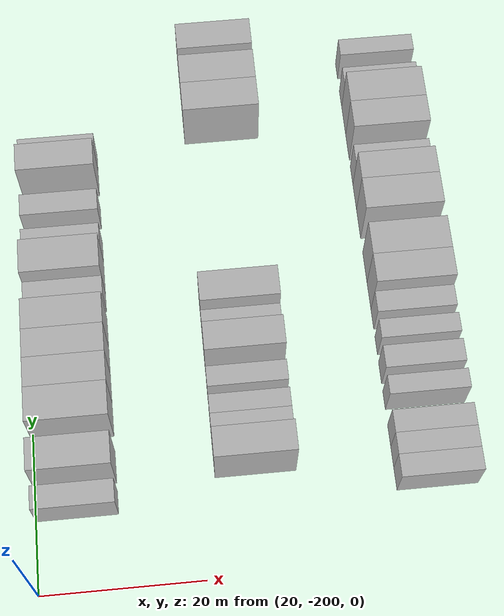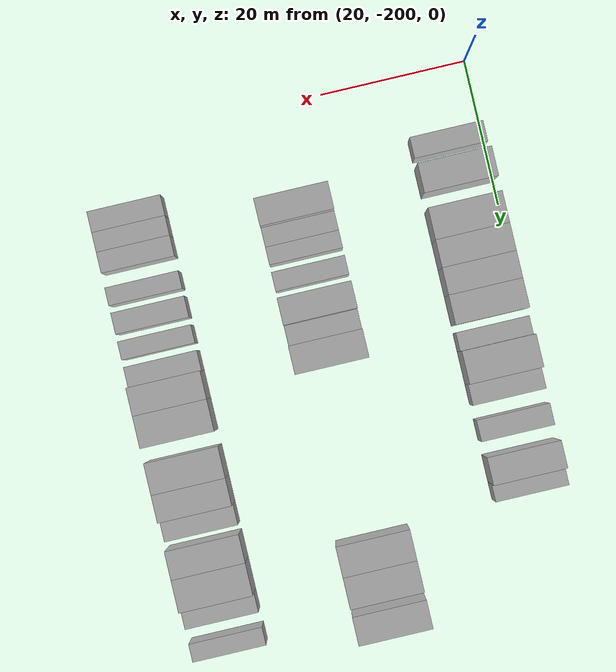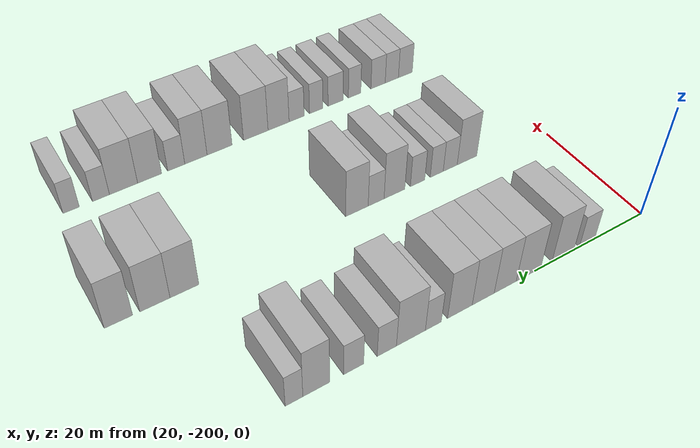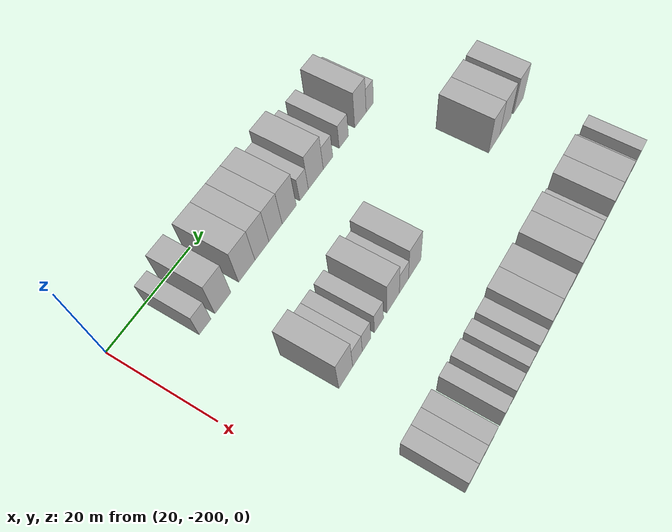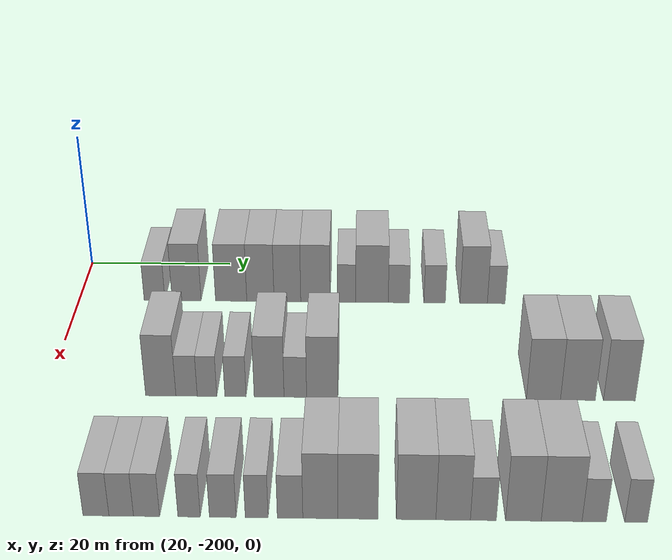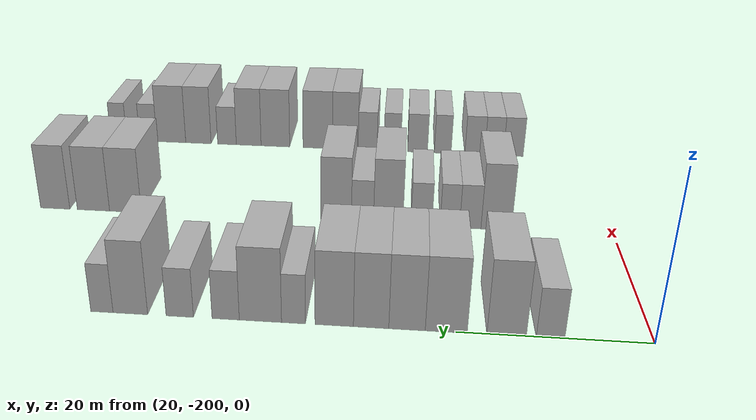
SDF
<sdf version="1.6">
 <world name="default">
  <model name="building_49">
   <static>1</static>
   <pose>25.0000 -189.5709 0 0.000000 0.000000 0.000000</pose>
   <link name="link">
    <pose>0 0 3.00 0 0 0</pose>
    <collision name="collision"><geometry><box><size>10.0000 2.8744 6.0000</size></box></geometry></collision>
    <visual name="visual">
     <cast_shadows>0</cast_shadows>
     <geometry><box><size>10.0000 2.8744 6.0000</size></box></geometry>
     <material>
      <script>
       <uri>model://HANNAS_wall/materials/scripts</uri>
       <uri>model://HANNAS_wall/materials/textures</uri>
       <name>vrc/HANNAS_wall</name>
      </script>
     </material>
    </visual>
   </link>
  </model>
  <model name="building_50">
   <static>1</static>
   <pose>25.0000 -185.1318 0 0.000000 0.000000 0.000000</pose>
   <link name="link">
    <pose>0 0 4.50 0 0 0</pose>
    <collision name="collision"><geometry><box><size>10.0000 4.0038 9.0000</size></box></geometry></collision>
    <visual name="visual">
     <cast_shadows>0</cast_shadows>
     <geometry><box><size>10.0000 4.0038 9.0000</size></box></geometry>
     <material>
      <script>
       <uri>model://HANNAS_wall/materials/scripts</uri>
       <uri>model://HANNAS_wall/materials/textures</uri>
       <name>vrc/HANNAS_wall</name>
      </script>
     </material>
    </visual>
   </link>
  </model>
  <model name="building_51">
   <static>1</static>
   <pose>25.0000 -178.9744 0 0.000000 0.000000 0.000000</pose>
   <link name="link">
    <pose>0 0 4.50 0 0 0</pose>
    <collision name="collision"><geometry><box><size>10.0000 4.3110 9.0000</size></box></geometry></collision>
    <visual name="visual">
     <cast_shadows>0</cast_shadows>
     <geometry><box><size>10.0000 4.3110 9.0000</size></box></geometry>
     <material>
      <script>
       <uri>model://HANNAS_wall/materials/scripts</uri>
       <uri>model://HANNAS_wall/materials/textures</uri>
       <name>vrc/HANNAS_wall</name>
      </script>
     </material>
    </visual>
   </link>
  </model>
  <model name="building_52">
   <static>1</static>
   <pose>25.0000 -174.9340 0 0.000000 0.000000 0.000000</pose>
   <link name="link">
    <pose>0 0 4.50 0 0 0</pose>
    <collision name="collision"><geometry><box><size>10.0000 3.7698 9.0000</size></box></geometry></collision>
    <visual name="visual">
     <cast_shadows>0</cast_shadows>
     <geometry><box><size>10.0000 3.7698 9.0000</size></box></geometry>
     <material>
      <script>
       <uri>model://HANNAS_wall/materials/scripts</uri>
       <uri>model://HANNAS_wall/materials/textures</uri>
       <name>vrc/HANNAS_wall</name>
      </script>
     </material>
    </visual>
   </link>
  </model>
  <model name="building_53">
   <static>1</static>
   <pose>25.0000 -171.2082 0 0.000000 0.000000 0.000000</pose>
   <link name="link">
    <pose>0 0 4.50 0 0 0</pose>
    <collision name="collision"><geometry><box><size>10.0000 3.6818 9.0000</size></box></geometry></collision>
    <visual name="visual">
     <cast_shadows>0</cast_shadows>
     <geometry><box><size>10.0000 3.6818 9.0000</size></box></geometry>
     <material>
      <script>
       <uri>model://HANNAS_wall/materials/scripts</uri>
       <uri>model://HANNAS_wall/materials/textures</uri>
       <name>vrc/HANNAS_wall</name>
      </script>
     </material>
    </visual>
   </link>
  </model>
  <model name="building_54">
   <static>1</static>
   <pose>25.0000 -167.3551 0 0.000000 0.000000 0.000000</pose>
   <link name="link">
    <pose>0 0 4.50 0 0 0</pose>
    <collision name="collision"><geometry><box><size>10.0000 4.0243 9.0000</size></box></geometry></collision>
    <visual name="visual">
     <cast_shadows>0</cast_shadows>
     <geometry><box><size>10.0000 4.0243 9.0000</size></box></geometry>
     <material>
      <script>
       <uri>model://HANNAS_wall/materials/scripts</uri>
       <uri>model://HANNAS_wall/materials/textures</uri>
       <name>vrc/HANNAS_wall</name>
      </script>
     </material>
    </visual>
   </link>
  </model>
  <model name="building_55">
   <static>1</static>
   <pose>25.0000 -163.0784 0 0.000000 0.000000 0.000000</pose>
   <link name="link">
    <pose>0 0 3.00 0 0 0</pose>
    <collision name="collision"><geometry><box><size>10.0000 2.5291 6.0000</size></box></geometry></collision>
    <visual name="visual">
     <cast_shadows>0</cast_shadows>
     <geometry><box><size>10.0000 2.5291 6.0000</size></box></geometry>
     <material>
      <script>
       <uri>model://HANNAS_wall/materials/scripts</uri>
       <uri>model://HANNAS_wall/materials/textures</uri>
       <name>vrc/HANNAS_wall</name>
      </script>
     </material>
    </visual>
   </link>
  </model>
  <model name="building_56">
   <static>1</static>
   <pose>25.0000 -159.5684 0 0.000000 0.000000 0.000000</pose>
   <link name="link">
    <pose>0 0 4.50 0 0 0</pose>
    <collision name="collision"><geometry><box><size>10.0000 4.4909 9.0000</size></box></geometry></collision>
    <visual name="visual">
     <cast_shadows>0</cast_shadows>
     <geometry><box><size>10.0000 4.4909 9.0000</size></box></geometry>
     <material>
      <script>
       <uri>model://HANNAS_wall/materials/scripts</uri>
       <uri>model://HANNAS_wall/materials/textures</uri>
       <name>vrc/HANNAS_wall</name>
      </script>
     </material>
    </visual>
   </link>
  </model>
  <model name="building_57">
   <static>1</static>
   <pose>25.0000 -155.8643 0 0.000000 0.000000 0.000000</pose>
   <link name="link">
    <pose>0 0 3.00 0 0 0</pose>
    <collision name="collision"><geometry><box><size>10.0000 2.9171 6.0000</size></box></geometry></collision>
    <visual name="visual">
     <cast_shadows>0</cast_shadows>
     <geometry><box><size>10.0000 2.9171 6.0000</size></box></geometry>
     <material>
      <script>
       <uri>model://HANNAS_wall/materials/scripts</uri>
       <uri>model://HANNAS_wall/materials/textures</uri>
       <name>vrc/HANNAS_wall</name>
      </script>
     </material>
    </visual>
   </link>
  </model>
  <model name="building_58">
   <static>1</static>
   <pose>25.0000 -150.9313 0 0.000000 0.000000 0.000000</pose>
   <link name="link">
    <pose>0 0 3.00 0 0 0</pose>
    <collision name="collision"><geometry><box><size>10.0000 2.9490 6.0000</size></box></geometry></collision>
    <visual name="visual">
     <cast_shadows>0</cast_shadows>
     <geometry><box><size>10.0000 2.9490 6.0000</size></box></geometry>
     <material>
      <script>
       <uri>model://HANNAS_wall/materials/scripts</uri>
       <uri>model://HANNAS_wall/materials/textures</uri>
       <name>vrc/HANNAS_wall</name>
      </script>
     </material>
    </visual>
   </link>
  </model>
  <model name="building_59">
   <static>1</static>
   <pose>25.0000 -145.5702 0 0.000000 0.000000 0.000000</pose>
   <link name="link">
    <pose>0 0 4.50 0 0 0</pose>
    <collision name="collision"><geometry><box><size>10.0000 3.7731 9.0000</size></box></geometry></collision>
    <visual name="visual">
     <cast_shadows>0</cast_shadows>
     <geometry><box><size>10.0000 3.7731 9.0000</size></box></geometry>
     <material>
      <script>
       <uri>model://HANNAS_wall/materials/scripts</uri>
       <uri>model://HANNAS_wall/materials/textures</uri>
       <name>vrc/HANNAS_wall</name>
      </script>
     </material>
    </visual>
   </link>
  </model>
  <model name="building_60">
   <static>1</static>
   <pose>25.0000 -142.4642 0 0.000000 0.000000 0.000000</pose>
   <link name="link">
    <pose>0 0 3.00 0 0 0</pose>
    <collision name="collision"><geometry><box><size>10.0000 2.4389 6.0000</size></box></geometry></collision>
    <visual name="visual">
     <cast_shadows>0</cast_shadows>
     <geometry><box><size>10.0000 2.4389 6.0000</size></box></geometry>
     <material>
      <script>
       <uri>model://HANNAS_wall/materials/scripts</uri>
       <uri>model://HANNAS_wall/materials/textures</uri>
       <name>vrc/HANNAS_wall</name>
      </script>
     </material>
    </visual>
   </link>
  </model>
  <model name="building_230">
   <static>1</static>
   <pose>47.0000 -185.7111 0 0.000000 0.000000 0.000000</pose>
   <link name="link">
    <pose>0 0 4.50 0 0 0</pose>
    <collision name="collision"><geometry><box><size>10.0000 3.7472 9.0000</size></box></geometry></collision>
    <visual name="visual">
     <cast_shadows>0</cast_shadows>
     <geometry><box><size>10.0000 3.7472 9.0000</size></box></geometry>
     <material>
      <script>
       <uri>model://HANNAS_wall/materials/scripts</uri>
       <uri>model://HANNAS_wall/materials/textures</uri>
       <name>vrc/HANNAS_wall</name>
      </script>
     </material>
    </visual>
   </link>
  </model>
  <model name="building_231">
   <static>1</static>
   <pose>47.0000 -182.5179 0 0.000000 0.000000 0.000000</pose>
   <link name="link">
    <pose>0 0 3.00 0 0 0</pose>
    <collision name="collision"><geometry><box><size>10.0000 2.6393 6.0000</size></box></geometry></collision>
    <visual name="visual">
     <cast_shadows>0</cast_shadows>
     <geometry><box><size>10.0000 2.6393 6.0000</size></box></geometry>
     <material>
      <script>
       <uri>model://HANNAS_wall/materials/scripts</uri>
       <uri>model://HANNAS_wall/materials/textures</uri>
       <name>vrc/HANNAS_wall</name>
      </script>
     </material>
    </visual>
   </link>
  </model>
  <model name="building_232">
   <static>1</static>
   <pose>47.0000 -179.9889 0 0.000000 0.000000 0.000000</pose>
   <link name="link">
    <pose>0 0 3.00 0 0 0</pose>
    <collision name="collision"><geometry><box><size>10.0000 2.4186 6.0000</size></box></geometry></collision>
    <visual name="visual">
     <cast_shadows>0</cast_shadows>
     <geometry><box><size>10.0000 2.4186 6.0000</size></box></geometry>
     <material>
      <script>
       <uri>model://HANNAS_wall/materials/scripts</uri>
       <uri>model://HANNAS_wall/materials/textures</uri>
       <name>vrc/HANNAS_wall</name>
      </script>
     </material>
    </visual>
   </link>
  </model>
  <model name="building_233">
   <static>1</static>
   <pose>47.0000 -176.4675 0 0.000000 0.000000 0.000000</pose>
   <link name="link">
    <pose>0 0 3.00 0 0 0</pose>
    <collision name="collision"><geometry><box><size>10.0000 2.6242 6.0000</size></box></geometry></collision>
    <visual name="visual">
     <cast_shadows>0</cast_shadows>
     <geometry><box><size>10.0000 2.6242 6.0000</size></box></geometry>
     <material>
      <script>
       <uri>model://HANNAS_wall/materials/scripts</uri>
       <uri>model://HANNAS_wall/materials/textures</uri>
       <name>vrc/HANNAS_wall</name>
      </script>
     </material>
    </visual>
   </link>
  </model>
  <model name="building_234">
   <static>1</static>
   <pose>47.0000 -172.3102 0 0.000000 0.000000 0.000000</pose>
   <link name="link">
    <pose>0 0 4.50 0 0 0</pose>
    <collision name="collision"><geometry><box><size>10.0000 3.6903 9.0000</size></box></geometry></collision>
    <visual name="visual">
     <cast_shadows>0</cast_shadows>
     <geometry><box><size>10.0000 3.6903 9.0000</size></box></geometry>
     <material>
      <script>
       <uri>model://HANNAS_wall/materials/scripts</uri>
       <uri>model://HANNAS_wall/materials/textures</uri>
       <name>vrc/HANNAS_wall</name>
      </script>
     </material>
    </visual>
   </link>
  </model>
  <model name="building_235">
   <static>1</static>
   <pose>47.0000 -169.0744 0 0.000000 0.000000 0.000000</pose>
   <link name="link">
    <pose>0 0 3.00 0 0 0</pose>
    <collision name="collision"><geometry><box><size>10.0000 2.7812 6.0000</size></box></geometry></collision>
    <visual name="visual">
     <cast_shadows>0</cast_shadows>
     <geometry><box><size>10.0000 2.7812 6.0000</size></box></geometry>
     <material>
      <script>
       <uri>model://HANNAS_wall/materials/scripts</uri>
       <uri>model://HANNAS_wall/materials/textures</uri>
       <name>vrc/HANNAS_wall</name>
      </script>
     </material>
    </visual>
   </link>
  </model>
  <model name="building_236">
   <static>1</static>
   <pose>47.0000 -165.7476 0 0.000000 0.000000 0.000000</pose>
   <link name="link">
    <pose>0 0 4.50 0 0 0</pose>
    <collision name="collision"><geometry><box><size>10.0000 3.8726 9.0000</size></box></geometry></collision>
    <visual name="visual">
     <cast_shadows>0</cast_shadows>
     <geometry><box><size>10.0000 3.8726 9.0000</size></box></geometry>
     <material>
      <script>
       <uri>model://HANNAS_wall/materials/scripts</uri>
       <uri>model://HANNAS_wall/materials/textures</uri>
       <name>vrc/HANNAS_wall</name>
      </script>
     </material>
    </visual>
   </link>
  </model>
  <model name="building_237">
   <static>1</static>
   <pose>47.0000 -138.5252 0 0.000000 0.000000 0.000000</pose>
   <link name="link">
    <pose>0 0 4.50 0 0 0</pose>
    <collision name="collision"><geometry><box><size>10.0000 4.1907 9.0000</size></box></geometry></collision>
    <visual name="visual">
     <cast_shadows>0</cast_shadows>
     <geometry><box><size>10.0000 4.1907 9.0000</size></box></geometry>
     <material>
      <script>
       <uri>model://HANNAS_wall/materials/scripts</uri>
       <uri>model://HANNAS_wall/materials/textures</uri>
       <name>vrc/HANNAS_wall</name>
      </script>
     </material>
    </visual>
   </link>
  </model>
  <model name="building_238">
   <static>1</static>
   <pose>47.0000 -134.2903 0 0.000000 0.000000 0.000000</pose>
   <link name="link">
    <pose>0 0 4.50 0 0 0</pose>
    <collision name="collision"><geometry><box><size>10.0000 4.2793 9.0000</size></box></geometry></collision>
    <visual name="visual">
     <cast_shadows>0</cast_shadows>
     <geometry><box><size>10.0000 4.2793 9.0000</size></box></geometry>
     <material>
      <script>
       <uri>model://HANNAS_wall/materials/scripts</uri>
       <uri>model://HANNAS_wall/materials/textures</uri>
       <name>vrc/HANNAS_wall</name>
      </script>
     </material>
    </visual>
   </link>
  </model>
  <model name="building_239">
   <static>1</static>
   <pose>47.0000 -129.2012 0 0.000000 0.000000 0.000000</pose>
   <link name="link">
    <pose>0 0 4.50 0 0 0</pose>
    <collision name="collision"><geometry><box><size>10.0000 3.8988 9.0000</size></box></geometry></collision>
    <visual name="visual">
     <cast_shadows>0</cast_shadows>
     <geometry><box><size>10.0000 3.8988 9.0000</size></box></geometry>
     <material>
      <script>
       <uri>model://HANNAS_wall/materials/scripts</uri>
       <uri>model://HANNAS_wall/materials/textures</uri>
       <name>vrc/HANNAS_wall</name>
      </script>
     </material>
    </visual>
   </link>
  </model>
  <model name="building_415">
   <static>1</static>
   <pose>69.0000 -189.8057 0 0.000000 0.000000 0.000000</pose>
   <link name="link">
    <pose>0 0 3.00 0 0 0</pose>
    <collision name="collision"><geometry><box><size>10.0000 2.8404 6.0000</size></box></geometry></collision>
    <visual name="visual">
     <cast_shadows>0</cast_shadows>
     <geometry><box><size>10.0000 2.8404 6.0000</size></box></geometry>
     <material>
      <script>
       <uri>model://HANNAS_wall/materials/scripts</uri>
       <uri>model://HANNAS_wall/materials/textures</uri>
       <name>vrc/HANNAS_wall</name>
      </script>
     </material>
    </visual>
   </link>
  </model>
  <model name="building_416">
   <static>1</static>
   <pose>69.0000 -187.0419 0 0.000000 0.000000 0.000000</pose>
   <link name="link">
    <pose>0 0 3.00 0 0 0</pose>
    <collision name="collision"><geometry><box><size>10.0000 2.6871 6.0000</size></box></geometry></collision>
    <visual name="visual">
     <cast_shadows>0</cast_shadows>
     <geometry><box><size>10.0000 2.6871 6.0000</size></box></geometry>
     <material>
      <script>
       <uri>model://HANNAS_wall/materials/scripts</uri>
       <uri>model://HANNAS_wall/materials/textures</uri>
       <name>vrc/HANNAS_wall</name>
      </script>
     </material>
    </visual>
   </link>
  </model>
  <model name="building_417">
   <static>1</static>
   <pose>69.0000 -184.2692 0 0.000000 0.000000 0.000000</pose>
   <link name="link">
    <pose>0 0 3.00 0 0 0</pose>
    <collision name="collision"><geometry><box><size>10.0000 2.8584 6.0000</size></box></geometry></collision>
    <visual name="visual">
     <cast_shadows>0</cast_shadows>
     <geometry><box><size>10.0000 2.8584 6.0000</size></box></geometry>
     <material>
      <script>
       <uri>model://HANNAS_wall/materials/scripts</uri>
       <uri>model://HANNAS_wall/materials/textures</uri>
       <name>vrc/HANNAS_wall</name>
      </script>
     </material>
    </visual>
   </link>
  </model>
  <model name="building_418">
   <static>1</static>
   <pose>69.0000 -179.6200 0 0.000000 0.000000 0.000000</pose>
   <link name="link">
    <pose>0 0 3.00 0 0 0</pose>
    <collision name="collision"><geometry><box><size>10.0000 2.4398 6.0000</size></box></geometry></collision>
    <visual name="visual">
     <cast_shadows>0</cast_shadows>
     <geometry><box><size>10.0000 2.4398 6.0000</size></box></geometry>
     <material>
      <script>
       <uri>model://HANNAS_wall/materials/scripts</uri>
       <uri>model://HANNAS_wall/materials/textures</uri>
       <name>vrc/HANNAS_wall</name>
      </script>
     </material>
    </visual>
   </link>
  </model>
  <model name="building_419">
   <static>1</static>
   <pose>69.0000 -175.9440 0 0.000000 0.000000 0.000000</pose>
   <link name="link">
    <pose>0 0 3.00 0 0 0</pose>
    <collision name="collision"><geometry><box><size>10.0000 2.9123 6.0000</size></box></geometry></collision>
    <visual name="visual">
     <cast_shadows>0</cast_shadows>
     <geometry><box><size>10.0000 2.9123 6.0000</size></box></geometry>
     <material>
      <script>
       <uri>model://HANNAS_wall/materials/scripts</uri>
       <uri>model://HANNAS_wall/materials/textures</uri>
       <name>vrc/HANNAS_wall</name>
      </script>
     </material>
    </visual>
   </link>
  </model>
  <model name="building_420">
   <static>1</static>
   <pose>69.0000 -172.2404 0 0.000000 0.000000 0.000000</pose>
   <link name="link">
    <pose>0 0 3.00 0 0 0</pose>
    <collision name="collision"><geometry><box><size>10.0000 2.4948 6.0000</size></box></geometry></collision>
    <visual name="visual">
     <cast_shadows>0</cast_shadows>
     <geometry><box><size>10.0000 2.4948 6.0000</size></box></geometry>
     <material>
      <script>
       <uri>model://HANNAS_wall/materials/scripts</uri>
       <uri>model://HANNAS_wall/materials/textures</uri>
       <name>vrc/HANNAS_wall</name>
      </script>
     </material>
    </visual>
   </link>
  </model>
  <model name="building_421">
   <static>1</static>
   <pose>69.0000 -168.6010 0 0.000000 0.000000 0.000000</pose>
   <link name="link">
    <pose>0 0 3.00 0 0 0</pose>
    <collision name="collision"><geometry><box><size>10.0000 2.7841 6.0000</size></box></geometry></collision>
    <visual name="visual">
     <cast_shadows>0</cast_shadows>
     <geometry><box><size>10.0000 2.7841 6.0000</size></box></geometry>
     <material>
      <script>
       <uri>model://HANNAS_wall/materials/scripts</uri>
       <uri>model://HANNAS_wall/materials/textures</uri>
       <name>vrc/HANNAS_wall</name>
      </script>
     </material>
    </visual>
   </link>
  </model>
  <model name="building_422">
   <static>1</static>
   <pose>69.0000 -165.2995 0 0.000000 0.000000 0.000000</pose>
   <link name="link">
    <pose>0 0 4.50 0 0 0</pose>
    <collision name="collision"><geometry><box><size>10.0000 3.8188 9.0000</size></box></geometry></collision>
    <visual name="visual">
     <cast_shadows>0</cast_shadows>
     <geometry><box><size>10.0000 3.8188 9.0000</size></box></geometry>
     <material>
      <script>
       <uri>model://HANNAS_wall/materials/scripts</uri>
       <uri>model://HANNAS_wall/materials/textures</uri>
       <name>vrc/HANNAS_wall</name>
      </script>
     </material>
    </visual>
   </link>
  </model>
  <model name="building_423">
   <static>1</static>
   <pose>69.0000 -161.2078 0 0.000000 0.000000 0.000000</pose>
   <link name="link">
    <pose>0 0 4.50 0 0 0</pose>
    <collision name="collision"><geometry><box><size>10.0000 4.3646 9.0000</size></box></geometry></collision>
    <visual name="visual">
     <cast_shadows>0</cast_shadows>
     <geometry><box><size>10.0000 4.3646 9.0000</size></box></geometry>
     <material>
      <script>
       <uri>model://HANNAS_wall/materials/scripts</uri>
       <uri>model://HANNAS_wall/materials/textures</uri>
       <name>vrc/HANNAS_wall</name>
      </script>
     </material>
    </visual>
   </link>
  </model>
  <model name="building_424">
   <static>1</static>
   <pose>69.0000 -154.8798 0 0.000000 0.000000 0.000000</pose>
   <link name="link">
    <pose>0 0 4.50 0 0 0</pose>
    <collision name="collision"><geometry><box><size>10.0000 4.2916 9.0000</size></box></geometry></collision>
    <visual name="visual">
     <cast_shadows>0</cast_shadows>
     <geometry><box><size>10.0000 4.2916 9.0000</size></box></geometry>
     <material>
      <script>
       <uri>model://HANNAS_wall/materials/scripts</uri>
       <uri>model://HANNAS_wall/materials/textures</uri>
       <name>vrc/HANNAS_wall</name>
      </script>
     </material>
    </visual>
   </link>
  </model>
  <model name="building_425">
   <static>1</static>
   <pose>69.0000 -150.8596 0 0.000000 0.000000 0.000000</pose>
   <link name="link">
    <pose>0 0 4.50 0 0 0</pose>
    <collision name="collision"><geometry><box><size>10.0000 3.7488 9.0000</size></box></geometry></collision>
    <visual name="visual">
     <cast_shadows>0</cast_shadows>
     <geometry><box><size>10.0000 3.7488 9.0000</size></box></geometry>
     <material>
      <script>
       <uri>model://HANNAS_wall/materials/scripts</uri>
       <uri>model://HANNAS_wall/materials/textures</uri>
       <name>vrc/HANNAS_wall</name>
      </script>
     </material>
    </visual>
   </link>
  </model>
  <model name="building_426">
   <static>1</static>
   <pose>69.0000 -147.5744 0 0.000000 0.000000 0.000000</pose>
   <link name="link">
    <pose>0 0 3.00 0 0 0</pose>
    <collision name="collision"><geometry><box><size>10.0000 2.8216 6.0000</size></box></geometry></collision>
    <visual name="visual">
     <cast_shadows>0</cast_shadows>
     <geometry><box><size>10.0000 2.8216 6.0000</size></box></geometry>
     <material>
      <script>
       <uri>model://HANNAS_wall/materials/scripts</uri>
       <uri>model://HANNAS_wall/materials/textures</uri>
       <name>vrc/HANNAS_wall</name>
      </script>
     </material>
    </visual>
   </link>
  </model>
  <model name="building_427">
   <static>1</static>
   <pose>69.0000 -143.2326 0 0.000000 0.000000 0.000000</pose>
   <link name="link">
    <pose>0 0 4.50 0 0 0</pose>
    <collision name="collision"><geometry><box><size>10.0000 3.8619 9.0000</size></box></geometry></collision>
    <visual name="visual">
     <cast_shadows>0</cast_shadows>
     <geometry><box><size>10.0000 3.8619 9.0000</size></box></geometry>
     <material>
      <script>
       <uri>model://HANNAS_wall/materials/scripts</uri>
       <uri>model://HANNAS_wall/materials/textures</uri>
       <name>vrc/HANNAS_wall</name>
      </script>
     </material>
    </visual>
   </link>
  </model>
  <model name="building_428">
   <static>1</static>
   <pose>69.0000 -139.0913 0 0.000000 0.000000 0.000000</pose>
   <link name="link">
    <pose>0 0 4.50 0 0 0</pose>
    <collision name="collision"><geometry><box><size>10.0000 4.4206 9.0000</size></box></geometry></collision>
    <visual name="visual">
     <cast_shadows>0</cast_shadows>
     <geometry><box><size>10.0000 4.4206 9.0000</size></box></geometry>
     <material>
      <script>
       <uri>model://HANNAS_wall/materials/scripts</uri>
       <uri>model://HANNAS_wall/materials/textures</uri>
       <name>vrc/HANNAS_wall</name>
      </script>
     </material>
    </visual>
   </link>
  </model>
  <model name="building_429">
   <static>1</static>
   <pose>69.0000 -135.5644 0 0.000000 0.000000 0.000000</pose>
   <link name="link">
    <pose>0 0 3.00 0 0 0</pose>
    <collision name="collision"><geometry><box><size>10.0000 2.6332 6.0000</size></box></geometry></collision>
    <visual name="visual">
     <cast_shadows>0</cast_shadows>
     <geometry><box><size>10.0000 2.6332 6.0000</size></box></geometry>
     <material>
      <script>
       <uri>model://HANNAS_wall/materials/scripts</uri>
       <uri>model://HANNAS_wall/materials/textures</uri>
       <name>vrc/HANNAS_wall</name>
      </script>
     </material>
    </visual>
   </link>
  </model>
  <model name="building_430">
   <static>1</static>
   <pose>69.0000 -131.0176 0 0.000000 0.000000 0.000000</pose>
   <link name="link">
    <pose>0 0 3.00 0 0 0</pose>
    <collision name="collision"><geometry><box><size>10.0000 2.4603 6.0000</size></box></geometry></collision>
    <visual name="visual">
     <cast_shadows>0</cast_shadows>
     <geometry><box><size>10.0000 2.4603 6.0000</size></box></geometry>
     <material>
      <script>
       <uri>model://HANNAS_wall/materials/scripts</uri>
       <uri>model://HANNAS_wall/materials/textures</uri>
       <name>vrc/HANNAS_wall</name>
      </script>
     </material>
    </visual>
   </link>
  </model>
 </world>
</sdf>
